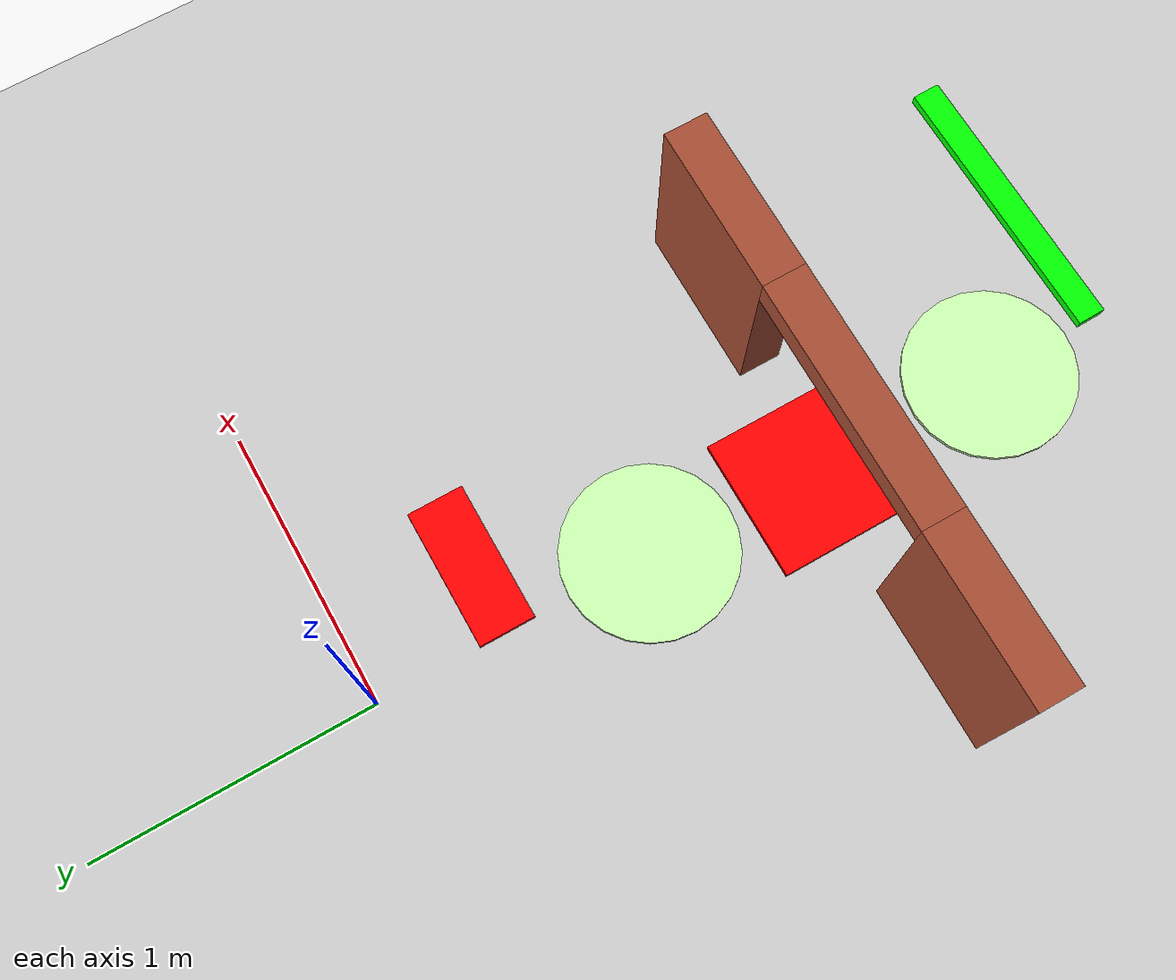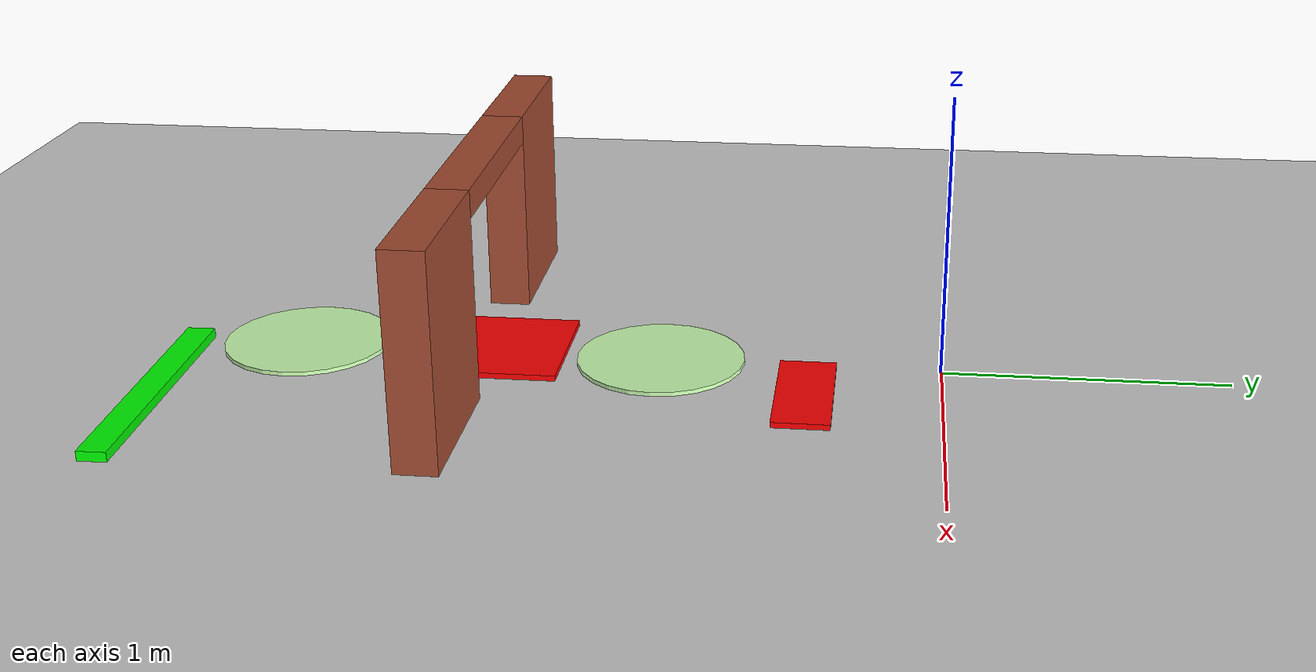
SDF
<sdf version="1.6">
 <world name="default">
  <model name="ground_plane">
   <static>1</static>
   <link name="link">
    <collision name="collision">
     <geometry><plane><normal>0 0 1</normal><size>100 100</size></plane></geometry>
     <surface><friction><ode><mu>100</mu><mu2>50</mu2></ode></friction></surface>
    </collision>
    <visual name="visual">
     <cast_shadows>0</cast_shadows>
     <geometry><plane><normal>0 0 1</normal><size>100 100</size></plane></geometry>
     <material>
      <script><uri>file://media/materials/scripts/gazebo.material</uri><name>Gazebo/Grey</name></script>
     </material>
    </visual>
   </link>
  </model>
  <light name="sun" type="directional">
   <pose>0 0 10 0 -0 0</pose>
   <diffuse>0.8 0.8 0.8 1</diffuse>
   <specular>0.2 0.2 0.2 1</specular>
   <attenuation>
    <range>1000</range>
    <constant>0.9</constant>
    <linear>0.01</linear>
    <quadratic>0.001</quadratic>
   </attenuation>
   <direction>-0.5 0.1 -0.9</direction>
  </light>
  <gravity>0 0 -9.81</gravity>
  <magnetic_field>6e-06 2.3e-05 -4.2e-05</magnetic_field>
  <atmosphere type="adiabatic"/>
  <physics name="default_physics" default="0" type="ode">
   <max_step_size>0.001</max_step_size>
   <real_time_factor>1</real_time_factor>
   <real_time_update_rate>1000</real_time_update_rate>
  </physics>
  <scene><ambient>0.4 0.4 0.4 1</ambient><background>0.7 0.7 0.7 1</background><shadows>1</shadows></scene>
  <spherical_coordinates>
   <surface_model>EARTH_WGS84</surface_model>
   <latitude_deg>0</latitude_deg>
   <longitude_deg>0</longitude_deg>
   <elevation>0</elevation>
   <heading_deg>0</heading_deg>
  </spherical_coordinates>
  <audio><device>default</device></audio>
  <model name="Untitled2">
   <pose>-0.048497 -1.64218 0 0 -0 0</pose>
   <link name="Wall_10">
    <visual name="Wall_10_Visual_0">
     <pose>-0.71 0 0.375 0 -0 0</pose>
     <geometry><box><size>0.58 0.15 0.75</size></box></geometry>
     <material>
      <script><uri>file://media/materials/scripts/gazebo.material</uri><name>Gazebo/Bricks</name></script>
      <ambient>1 1 1 1</ambient>
     </material>
     <meta><layer>0</layer></meta>
    </visual>
    <collision name="Wall_10_Collision_0">
     <geometry><box><size>0.58 0.15 0.75</size></box></geometry>
     <pose>-0.71 0 0.375 0 -0 0</pose>
    </collision>
    <visual name="Wall_10_Visual_1">
     <pose>0.715 0 0.375 0 -0 0</pose>
     <geometry><box><size>0.57 0.15 0.75</size></box></geometry>
     <material>
      <script><uri>file://media/materials/scripts/gazebo.material</uri><name>Gazebo/Bricks</name></script>
      <ambient>1 1 1 1</ambient>
     </material>
     <meta><layer>0</layer></meta>
    </visual>
    <collision name="Wall_10_Collision_1">
     <geometry><box><size>0.57 0.15 0.75</size></box></geometry>
     <pose>0.715 0 0.375 0 -0 0</pose>
    </collision>
    <visual name="Wall_10_Visual_2">
     <pose>0.005 0 0.7 0 -0 0</pose>
     <geometry><box><size>0.85 0.15 0.1</size></box></geometry>
     <material>
      <script><uri>file://media/materials/scripts/gazebo.material</uri><name>Gazebo/Bricks</name></script>
      <ambient>1 1 1 1</ambient>
     </material>
     <meta><layer>0</layer></meta>
    </visual>
    <collision name="Wall_10_Collision_2">
     <geometry><box><size>0.85 0.15 0.1</size></box></geometry>
     <pose>0.005 0 0.7 0 -0 0</pose>
    </collision>
   </link>
   <static>1</static>
  </model>
  <model name="unit_box_0_0">
   <link name="link_1">
    <inertial>
     <mass>1</mass>
     <inertia>
      <ixx>0.166667</ixx>
      <ixy>0</ixy>
      <ixz>0</ixz>
      <iyy>0.166667</iyy>
      <iyz>0</iyz>
      <izz>0.166667</izz>
     </inertia>
    </inertial>
    <pose>-0.005124 1.02513 -0.655443 0 -0 0</pose>
    <visual name="visual">
     <geometry><box><size>0.5 0.5 0.02</size></box></geometry>
     <material>
      <lighting>1</lighting>
      <script><uri>file://media/materials/scripts/gazebo.material</uri><name>Gazebo/Grey</name></script>
      <shader type="vertex"><normal_map>__default__</normal_map></shader>
      <ambient>1 0 0 0</ambient>
      <diffuse>0.7 0.7 0.7 1</diffuse>
      <specular>0.01 0.01 0.01 1</specular>
      <emissive>0 0 0 1</emissive>
     </material>
    </visual>
    <collision name="collision">
     <geometry><box><size>0.5 0.5 0.02</size></box></geometry>
     <surface>
      <friction>
       <ode><mu>1</mu><mu2>1</mu2><fdir1>0 0 0</fdir1><slip1>0</slip1><slip2>0</slip2></ode>
       <torsional>
        <coefficient>1</coefficient>
        <patch_radius>0</patch_radius>
        <surface_radius>0</surface_radius>
        <use_patch_radius>1</use_patch_radius>
        <ode><slip>0</slip></ode>
       </torsional>
      </friction>
      <bounce><restitution_coefficient>0</restitution_coefficient><threshold>1e+06</threshold></bounce>
      <contact>
       <collide_without_contact>0</collide_without_contact>
       <collide_without_contact_bitmask>1</collide_without_contact_bitmask>
       <collide_bitmask>1</collide_bitmask>
       <ode>
        <soft_cfm>0</soft_cfm>
        <soft_erp>0.2</soft_erp>
        <kp>1e+13</kp>
        <kd>1</kd>
        <max_vel>0.01</max_vel>
        <min_depth>0</min_depth>
       </ode>
       <bullet>
        <split_impulse>1</split_impulse>
        <split_impulse_penetration_threshold>-0.01</split_impulse_penetration_threshold>
        <soft_cfm>0</soft_cfm>
        <soft_erp>0.2</soft_erp>
        <kp>1e+13</kp>
        <kd>1</kd>
       </bullet>
      </contact>
     </surface>
    </collision>
   </link>
   <static>0</static>
   <pose>-0.03082 -2.61373 0.665443 0 -0 -0.000604</pose>
  </model>
  <model name="unit_box05_0">
   <link name="link_1">
    <inertial>
     <mass>1</mass>
     <inertia>
      <ixx>0.166667</ixx>
      <ixy>0</ixy>
      <ixz>0</ixz>
      <iyy>0.166667</iyy>
      <iyz>0</iyz>
      <izz>0.166667</izz>
     </inertia>
    </inertial>
    <pose>0.406742 0.858191 -0.477257 0 -0 0</pose>
    <visual name="visual">
     <geometry><box><size>1 0.1 0.035</size></box></geometry>
     <material>
      <lighting>1</lighting>
      <script><uri>file://media/materials/scripts/gazebo.material</uri><name>Gazebo/Grey</name></script>
      <shader type="vertex"><normal_map>__default__</normal_map></shader>
      <ambient>0 1 0 0</ambient>
      <diffuse>0.7 0.7 0.7 1</diffuse>
      <specular>0.01 0.01 0.01 1</specular>
      <emissive>0 0 0 1</emissive>
     </material>
    </visual>
    <collision name="collision">
     <geometry><box><size>1 0.1 0.035</size></box></geometry>
     <surface>
      <friction>
       <ode><mu>1</mu><mu2>1</mu2><fdir1>0 0 0</fdir1><slip1>0</slip1><slip2>0</slip2></ode>
       <torsional>
        <coefficient>1</coefficient>
        <patch_radius>0</patch_radius>
        <surface_radius>0</surface_radius>
        <use_patch_radius>1</use_patch_radius>
        <ode><slip>0</slip></ode>
       </torsional>
      </friction>
      <bounce><restitution_coefficient>0</restitution_coefficient><threshold>1e+06</threshold></bounce>
      <contact>
       <collide_without_contact>0</collide_without_contact>
       <collide_without_contact_bitmask>1</collide_without_contact_bitmask>
       <collide_bitmask>1</collide_bitmask>
       <ode>
        <soft_cfm>0</soft_cfm>
        <soft_erp>0.2</soft_erp>
        <kp>1e+13</kp>
        <kd>1</kd>
        <max_vel>0.01</max_vel>
        <min_depth>0</min_depth>
       </ode>
       <bullet>
        <split_impulse>1</split_impulse>
        <split_impulse_penetration_threshold>-0.01</split_impulse_penetration_threshold>
        <soft_cfm>0</soft_cfm>
        <soft_erp>0.2</soft_erp>
        <kp>1e+13</kp>
        <kd>1</kd>
       </bullet>
      </contact>
     </surface>
    </collision>
   </link>
   <static>0</static>
   <pose>0.07668 -3.55941 0.494752 -0 -5e-06 0.018197</pose>
  </model>
  <model name="unit_cylinder">
   <link name="link">
    <inertial>
     <mass>1</mass>
     <inertia><ixx>0.145833</ixx><ixy>0</ixy><ixz>0</ixz><iyy>0.145833</iyy><iyz>0</iyz><izz>0.125</izz></inertia>
    </inertial>
    <pose>-0.796349 1.15403 -0.48601 0 -0 0</pose>
    <visual name="visual">
     <geometry><cylinder><radius>0.3</radius><length>0.015</length></cylinder></geometry>
     <material>
      <script><name>Gazebo/Grey</name><uri>file://media/materials/scripts/gazebo.material</uri></script>
      <shader type="vertex"><normal_map>__default__</normal_map></shader>
      <ambient>0 0 1 1</ambient>
      <diffuse>0.8 1 0.7 1</diffuse>
      <specular>0.01 0.01 0.01 1</specular>
      <emissive>0 0 0 1</emissive>
     </material>
    </visual>
    <collision name="collision">
     <geometry><cylinder><radius>0.3</radius><length>0.015</length></cylinder></geometry>
     <surface>
      <friction>
       <ode><mu>1</mu><mu2>1</mu2><fdir1>0 0 0</fdir1><slip1>0</slip1><slip2>0</slip2></ode>
       <torsional>
        <coefficient>1</coefficient>
        <patch_radius>0</patch_radius>
        <surface_radius>0</surface_radius>
        <use_patch_radius>1</use_patch_radius>
        <ode><slip>0</slip></ode>
       </torsional>
      </friction>
      <bounce><restitution_coefficient>0</restitution_coefficient><threshold>1e+06</threshold></bounce>
      <contact>
       <collide_without_contact>0</collide_without_contact>
       <collide_without_contact_bitmask>1</collide_without_contact_bitmask>
       <collide_bitmask>1</collide_bitmask>
       <ode>
        <soft_cfm>0</soft_cfm>
        <soft_erp>0.2</soft_erp>
        <kp>1e+13</kp>
        <kd>1</kd>
        <max_vel>0.01</max_vel>
        <min_depth>0</min_depth>
       </ode>
       <bullet>
        <split_impulse>1</split_impulse>
        <split_impulse_penetration_threshold>-0.01</split_impulse_penetration_threshold>
        <soft_cfm>0</soft_cfm>
        <soft_erp>0.2</soft_erp>
        <kp>1e+13</kp>
        <kd>1</kd>
       </bullet>
      </contact>
     </surface>
    </collision>
   </link>
   <static>0</static>
   <pose>0.769465 -3.45087 0.49351 0 -0 0.000258</pose>
  </model>
  <model name="unit_cylinder_0">
   <link name="link">
    <inertial>
     <mass>1</mass>
     <inertia><ixx>0.145833</ixx><ixy>0</ixy><ixz>0</ixz><iyy>0.145833</iyy><iyz>0</iyz><izz>0.125</izz></inertia>
    </inertial>
    <pose>-0.796349 1.15403 -0.48601 0 -0 0</pose>
    <visual name="visual">
     <geometry><cylinder><radius>0.3</radius><length>0.015</length></cylinder></geometry>
     <material>
      <script><name>Gazebo/Grey</name><uri>file://media/materials/scripts/gazebo.material</uri></script>
      <shader type="vertex"><normal_map>__default__</normal_map></shader>
      <ambient>0 0 1 1</ambient>
      <diffuse>0.8 1 0.7 1</diffuse>
      <specular>0.01 0.01 0.01 1</specular>
      <emissive>0 0 0 1</emissive>
     </material>
    </visual>
    <collision name="collision">
     <geometry><cylinder><radius>0.3</radius><length>0.015</length></cylinder></geometry>
     <surface>
      <friction>
       <ode><mu>1</mu><mu2>1</mu2><fdir1>0 0 0</fdir1><slip1>0</slip1><slip2>0</slip2></ode>
       <torsional>
        <coefficient>1</coefficient>
        <patch_radius>0</patch_radius>
        <surface_radius>0</surface_radius>
        <use_patch_radius>1</use_patch_radius>
        <ode><slip>0</slip></ode>
       </torsional>
      </friction>
      <bounce><restitution_coefficient>0</restitution_coefficient><threshold>1e+06</threshold></bounce>
      <contact>
       <collide_without_contact>0</collide_without_contact>
       <collide_without_contact_bitmask>1</collide_without_contact_bitmask>
       <collide_bitmask>1</collide_bitmask>
       <ode>
        <soft_cfm>0</soft_cfm>
        <soft_erp>0.2</soft_erp>
        <kp>1e+13</kp>
        <kd>1</kd>
        <max_vel>0.01</max_vel>
        <min_depth>0</min_depth>
       </ode>
       <bullet>
        <split_impulse>1</split_impulse>
        <split_impulse_penetration_threshold>-0.01</split_impulse_penetration_threshold>
        <soft_cfm>0</soft_cfm>
        <soft_erp>0.2</soft_erp>
        <kp>1e+13</kp>
        <kd>1</kd>
       </bullet>
      </contact>
     </surface>
    </collision>
   </link>
   <static>0</static>
   <pose>0.805524 -2.14333 0.493511 -1e-06 -1e-06 0.006487</pose>
  </model>
  <model name="unit_box">
   <link name="link_1">
    <inertial>
     <mass>1</mass>
     <inertia>
      <ixx>0.166667</ixx>
      <ixy>0</ixy>
      <ixz>0</ixz>
      <iyy>0.166667</iyy>
      <iyz>0</iyz>
      <izz>0.166667</izz>
     </inertia>
    </inertial>
    <pose>0.406742 0.858191 -0.477257 0 -0 0</pose>
    <visual name="visual">
     <geometry><box><size>0.5 0.2 0.02</size></box></geometry>
     <material>
      <lighting>1</lighting>
      <script><uri>file://media/materials/scripts/gazebo.material</uri><name>Gazebo/Grey</name></script>
      <shader type="vertex"><normal_map>__default__</normal_map></shader>
      <ambient>1 0 0 0</ambient>
      <diffuse>0.7 0.7 0.7 1</diffuse>
      <specular>0.01 0.01 0.01 1</specular>
      <emissive>0 0 0 1</emissive>
     </material>
    </visual>
    <collision name="collision">
     <geometry><box><size>0.5 0.2 0.02</size></box></geometry>
     <surface>
      <friction>
       <ode><mu>1</mu><mu2>1</mu2><fdir1>0 0 0</fdir1><slip1>0</slip1><slip2>0</slip2></ode>
       <torsional>
        <coefficient>1</coefficient>
        <patch_radius>0</patch_radius>
        <surface_radius>0</surface_radius>
        <use_patch_radius>1</use_patch_radius>
        <ode><slip>0</slip></ode>
       </torsional>
      </friction>
      <bounce><restitution_coefficient>0</restitution_coefficient><threshold>1e+06</threshold></bounce>
      <contact>
       <collide_without_contact>0</collide_without_contact>
       <collide_without_contact_bitmask>1</collide_without_contact_bitmask>
       <collide_bitmask>1</collide_bitmask>
       <ode>
        <soft_cfm>0</soft_cfm>
        <soft_erp>0.2</soft_erp>
        <kp>1e+13</kp>
        <kd>1</kd>
        <max_vel>0.01</max_vel>
        <min_depth>0</min_depth>
       </ode>
       <bullet>
        <split_impulse>1</split_impulse>
        <split_impulse_penetration_threshold>-0.01</split_impulse_penetration_threshold>
        <soft_cfm>0</soft_cfm>
        <soft_erp>0.2</soft_erp>
        <kp>1e+13</kp>
        <kd>1</kd>
       </bullet>
      </contact>
     </surface>
    </collision>
   </link>
   <static>0</static>
   <pose>-0.159922 -1.3261 0.487257 -0 -0 -0.001204</pose>
  </model>
 </world>
</sdf>
